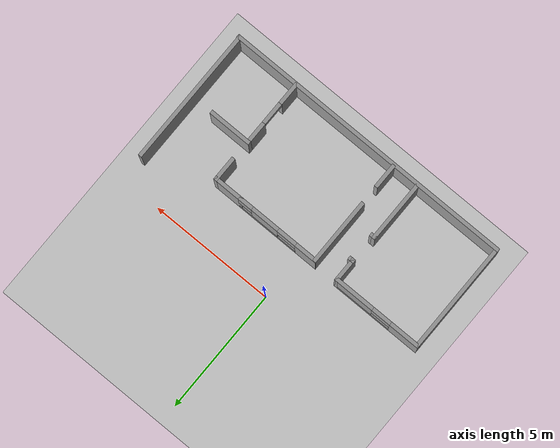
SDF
<sdf version="1.6">
 <world name="default">
  <model name="ground_plane">
   <static>1</static>
   <link name="link">
    <collision name="collision">
     <geometry><plane><normal>0 0 1</normal><size>100 100</size></plane></geometry>
     <surface><friction><ode><mu>100</mu><mu2>50</mu2></ode></friction></surface>
    </collision>
    <visual name="visual">
     <cast_shadows>0</cast_shadows>
     <geometry><plane><normal>0 0 1</normal><size>100 100</size></plane></geometry>
     <material>
      <script><uri>file://media/materials/scripts/gazebo.material</uri><name>Gazebo/Grey</name></script>
     </material>
    </visual>
   </link>
  </model>
  <model name="officeadd">
   <pose>0.57945 -3.61762 0 0 -0 0</pose>
   <link name="Wall_14">
    <pose>-4.02731 1.67357 0 0 -0 0</pose>
    <visual name="Wall_14_Visual_0">
     <pose>-1.24347 0 1.25 0 -0 0</pose>
     <geometry><box><size>1.26306 0.15 2.5</size></box></geometry>
     <material>
      <script><uri>file://media/materials/scripts/gazebo.material</uri><name>Gazebo/Grey</name></script>
      <ambient>1 1 1 1</ambient>
     </material>
     <meta><layer>0</layer></meta>
    </visual>
    <collision name="Wall_14_Collision_0">
     <geometry><box><size>1.26306 0.15 2.5</size></box></geometry>
     <pose>-1.24347 0 1.25 0 -0 0</pose>
    </collision>
    <visual name="Wall_14_Visual_1">
     <pose>0.631531 0 0.25 0 -0 0</pose>
     <geometry><box><size>2.48694 0.15 0.5</size></box></geometry>
     <material>
      <script><uri>file://media/materials/scripts/gazebo.material</uri><name>Gazebo/Grey</name></script>
      <ambient>1 1 1 1</ambient>
     </material>
     <meta><layer>0</layer></meta>
    </visual>
    <collision name="Wall_14_Collision_1">
     <geometry><box><size>2.48694 0.15 0.5</size></box></geometry>
     <pose>0.631531 0 0.25 0 -0 0</pose>
    </collision>
    <visual name="Wall_14_Visual_2">
     <pose>1.03153 0 1.5 0 -0 0</pose>
     <geometry><box><size>1.68694 0.15 2</size></box></geometry>
     <material>
      <script><uri>file://media/materials/scripts/gazebo.material</uri><name>Gazebo/Grey</name></script>
      <ambient>1 1 1 1</ambient>
     </material>
     <meta><layer>0</layer></meta>
    </visual>
    <collision name="Wall_14_Collision_2">
     <geometry><box><size>1.68694 0.15 2</size></box></geometry>
     <pose>1.03153 0 1.5 0 -0 0</pose>
    </collision>
    <visual name="Wall_14_Visual_3">
     <pose>-0.211938 0 1.9 0 -0 0</pose>
     <geometry><box><size>0.8 0.15 1.2</size></box></geometry>
     <material>
      <script><uri>file://media/materials/scripts/gazebo.material</uri><name>Gazebo/Grey</name></script>
      <ambient>1 1 1 1</ambient>
     </material>
     <meta><layer>0</layer></meta>
    </visual>
    <collision name="Wall_14_Collision_3">
     <geometry><box><size>0.8 0.15 1.2</size></box></geometry>
     <pose>-0.211938 0 1.9 0 -0 0</pose>
    </collision>
   </link>
   <link name="Wall_15">
    <collision name="Wall_15_Collision">
     <geometry><box><size>1 0.15 2.5</size></box></geometry>
     <pose>0 0 1.25 0 -0 0</pose>
    </collision>
    <visual name="Wall_15_Visual">
     <pose>0 0 1.25 0 -0 0</pose>
     <geometry><box><size>1 0.15 2.5</size></box></geometry>
     <material>
      <script><uri>file://media/materials/scripts/gazebo.material</uri><name>Gazebo/Grey</name></script>
      <ambient>1 1 1 1</ambient>
     </material>
     <meta><layer>0</layer></meta>
    </visual>
    <pose>-2.22731 1.24857 0 0 -0 -1.5708</pose>
   </link>
   <link name="Wall_16">
    <collision name="Wall_16_Collision">
     <geometry><box><size>0.25 0.15 2.5</size></box></geometry>
     <pose>0 0 1.25 0 -0 0</pose>
    </collision>
    <visual name="Wall_16_Visual">
     <pose>0 0 1.25 0 -0 0</pose>
     <geometry><box><size>0.25 0.15 2.5</size></box></geometry>
     <material>
      <script><uri>file://media/materials/scripts/gazebo.material</uri><name>Gazebo/Grey</name></script>
      <ambient>1 1 1 1</ambient>
     </material>
     <meta><layer>0</layer></meta>
    </visual>
    <pose>-2.17731 0.823566 0 0 -0 0</pose>
   </link>
   <link name="Wall_18">
    <collision name="Wall_18_Collision">
     <geometry><box><size>0.25 0.15 2.5</size></box></geometry>
     <pose>0 0 1.25 0 -0 0</pose>
    </collision>
    <visual name="Wall_18_Visual">
     <pose>0 0 1.25 0 -0 0</pose>
     <geometry><box><size>0.25 0.15 2.5</size></box></geometry>
     <material>
      <script><uri>file://media/materials/scripts/gazebo.material</uri><name>Gazebo/Grey</name></script>
      <ambient>1 1 1 1</ambient>
     </material>
     <meta><layer>0</layer></meta>
    </visual>
    <pose>-2.23314 -0.282491 0 0 -0 0</pose>
   </link>
   <link name="Wall_20">
    <collision name="Wall_20_Collision">
     <geometry><box><size>2.68388 0.15 2.5</size></box></geometry>
     <pose>0 0 1.25 0 -0 0</pose>
    </collision>
    <visual name="Wall_20_Visual">
     <pose>0 0 1.25 0 -0 0</pose>
     <geometry><box><size>2.68388 0.15 2.5</size></box></geometry>
     <material>
      <script><uri>file://media/materials/scripts/gazebo.material</uri><name>Gazebo/Grey</name></script>
      <ambient>1 1 1 1</ambient>
     </material>
     <meta><layer>0</layer></meta>
    </visual>
    <pose>-1.21507 0.374342 0 0 -0 -1.5708</pose>
   </link>
   <link name="Wall_22">
    <collision name="Wall_22_Collision">
     <geometry><box><size>1 0.15 2.5</size></box></geometry>
     <pose>0 0 1.25 0 -0 0</pose>
    </collision>
    <visual name="Wall_22_Visual">
     <pose>0 0 1.25 0 -0 0</pose>
     <geometry><box><size>1 0.15 2.5</size></box></geometry>
     <material>
      <script><uri>file://media/materials/scripts/gazebo.material</uri><name>Gazebo/Grey</name></script>
      <ambient>1 1 1 1</ambient>
     </material>
     <meta><layer>0</layer></meta>
    </visual>
    <pose>-1.20548 -2.16447 0 0 -0 -1.5708</pose>
   </link>
   <link name="Wall_24">
    <pose>0.459933 1.6545 0 0 -0 0</pose>
    <visual name="Wall_24_Visual_0">
     <pose>-1.28249 0 1.25 0 -0 0</pose>
     <geometry><box><size>0.935013 0.15 2.5</size></box></geometry>
     <material>
      <script><uri>file://media/materials/scripts/gazebo.material</uri><name>Gazebo/Grey</name></script>
      <ambient>1 1 1 1</ambient>
     </material>
     <meta><layer>0</layer></meta>
    </visual>
    <collision name="Wall_24_Collision_0">
     <geometry><box><size>0.935013 0.15 2.5</size></box></geometry>
     <pose>-1.28249 0 1.25 0 -0 0</pose>
    </collision>
    <visual name="Wall_24_Visual_1">
     <pose>0.467506 0 0.25 0 -0 0</pose>
     <geometry><box><size>2.56499 0.15 0.5</size></box></geometry>
     <material>
      <script><uri>file://media/materials/scripts/gazebo.material</uri><name>Gazebo/Grey</name></script>
      <ambient>1 1 1 1</ambient>
     </material>
     <meta><layer>0</layer></meta>
    </visual>
    <collision name="Wall_24_Collision_1">
     <geometry><box><size>2.56499 0.15 0.5</size></box></geometry>
     <pose>0.467506 0 0.25 0 -0 0</pose>
    </collision>
    <visual name="Wall_24_Visual_2">
     <pose>0.570578 0 1.5 0 -0 0</pose>
     <geometry><box><size>1.17113 0.15 2</size></box></geometry>
     <material>
      <script><uri>file://media/materials/scripts/gazebo.material</uri><name>Gazebo/Grey</name></script>
      <ambient>1 1 1 1</ambient>
     </material>
     <meta><layer>0</layer></meta>
    </visual>
    <collision name="Wall_24_Collision_2">
     <geometry><box><size>1.17113 0.15 2</size></box></geometry>
     <pose>0.570578 0 1.5 0 -0 0</pose>
    </collision>
    <visual name="Wall_24_Visual_3">
     <pose>0.570578 0 1.5 0 -0 0</pose>
     <geometry><box><size>1.17113 0.15 2</size></box></geometry>
     <material>
      <script><uri>file://media/materials/scripts/gazebo.material</uri><name>Gazebo/Grey</name></script>
      <ambient>1 1 1 1</ambient>
     </material>
     <meta><layer>0</layer></meta>
    </visual>
    <collision name="Wall_24_Collision_3">
     <geometry><box><size>1.17113 0.15 2</size></box></geometry>
     <pose>0.570578 0 1.5 0 -0 0</pose>
    </collision>
    <visual name="Wall_24_Visual_4">
     <pose>-0.414987 0 1.9 0 -0 0</pose>
     <geometry><box><size>0.8 0.15 1.2</size></box></geometry>
     <material>
      <script><uri>file://media/materials/scripts/gazebo.material</uri><name>Gazebo/Grey</name></script>
      <ambient>1 1 1 1</ambient>
     </material>
     <meta><layer>0</layer></meta>
    </visual>
    <collision name="Wall_24_Collision_4">
     <geometry><box><size>0.8 0.15 1.2</size></box></geometry>
     <pose>-0.414987 0 1.9 0 -0 0</pose>
    </collision>
    <visual name="Wall_24_Visual_5">
     <pose>1.45307 0 1.9 0 -0 0</pose>
     <geometry><box><size>0.593857 0.15 1.2</size></box></geometry>
     <material>
      <script><uri>file://media/materials/scripts/gazebo.material</uri><name>Gazebo/Grey</name></script>
      <ambient>1 1 1 1</ambient>
     </material>
     <meta><layer>0</layer></meta>
    </visual>
    <collision name="Wall_24_Collision_5">
     <geometry><box><size>0.593857 0.15 1.2</size></box></geometry>
     <pose>1.45307 0 1.9 0 -0 0</pose>
    </collision>
    <visual name="Wall_24_Visual_6">
     <pose>1.45307 0 1.9 0 -0 0</pose>
     <geometry><box><size>0.593857 0.15 1.2</size></box></geometry>
     <material>
      <script><uri>file://media/materials/scripts/gazebo.material</uri><name>Gazebo/Grey</name></script>
      <ambient>1 1 1 1</ambient>
     </material>
     <meta><layer>0</layer></meta>
    </visual>
    <collision name="Wall_24_Collision_6">
     <geometry><box><size>0.593857 0.15 1.2</size></box></geometry>
     <pose>1.45307 0 1.9 0 -0 0</pose>
    </collision>
   </link>
   <link name="Wall_28">
    <collision name="Wall_28_Collision">
     <geometry><box><size>1.01323 0.15 2.5</size></box></geometry>
     <pose>0 0 1.25 0 -0 0</pose>
    </collision>
    <visual name="Wall_28_Visual">
     <pose>0 0 1.25 0 -0 0</pose>
     <geometry><box><size>1.01323 0.15 2.5</size></box></geometry>
     <material>
      <script><uri>file://media/materials/scripts/gazebo.material</uri><name>Gazebo/Grey</name></script>
      <ambient>1 1 1 1</ambient>
     </material>
     <meta><layer>0</layer></meta>
    </visual>
    <pose>3.24816 1.22289 0 0 -0 -1.5708</pose>
   </link>
   <link name="Wall_3">
    <collision name="Wall_3_Collision">
     <geometry><box><size>4.5 0.15 2.5</size></box></geometry>
     <pose>0 0 1.25 0 -0 0</pose>
    </collision>
    <visual name="Wall_3_Visual">
     <pose>0 0 1.25 0 -0 0</pose>
     <geometry><box><size>4.5 0.15 2.5</size></box></geometry>
     <material>
      <script><uri>file://media/materials/scripts/gazebo.material</uri><name>Gazebo/Grey</name></script>
      <ambient>1 1 1 1</ambient>
     </material>
     <meta><layer>0</layer></meta>
    </visual>
    <pose>-5.82731 -0.501434 0 0 -0 -1.5708</pose>
   </link>
   <link name="Wall_30">
    <pose>3.22581 -1.33288 0 0 -0 -1.5708</pose>
    <visual name="Wall_30_Visual_0">
     <pose>-0.907732 0 1.25 0 -0 0</pose>
     <geometry><box><size>0.934537 0.15 2.5</size></box></geometry>
     <material>
      <script><uri>file://media/materials/scripts/gazebo.material</uri><name>Gazebo/Grey</name></script>
      <ambient>1 1 1 1</ambient>
     </material>
     <meta><layer>0</layer></meta>
    </visual>
    <collision name="Wall_30_Collision_0">
     <geometry><box><size>0.934537 0.15 2.5</size></box></geometry>
     <pose>-0.907732 0 1.25 0 -0 0</pose>
    </collision>
    <visual name="Wall_30_Visual_1">
     <pose>0.917268 0 1.25 0 -0 0</pose>
     <geometry><box><size>0.915463 0.15 2.5</size></box></geometry>
     <material>
      <script><uri>file://media/materials/scripts/gazebo.material</uri><name>Gazebo/Grey</name></script>
      <ambient>1 1 1 1</ambient>
     </material>
     <meta><layer>0</layer></meta>
    </visual>
    <collision name="Wall_30_Collision_1">
     <geometry><box><size>0.915463 0.15 2.5</size></box></geometry>
     <pose>0.917268 0 1.25 0 -0 0</pose>
    </collision>
    <visual name="Wall_30_Visual_2">
     <pose>0.009537 0 2.25 0 -0 0</pose>
     <geometry><box><size>0.9 0.15 0.5</size></box></geometry>
     <material>
      <script><uri>file://media/materials/scripts/gazebo.material</uri><name>Gazebo/Grey</name></script>
      <ambient>1 1 1 1</ambient>
     </material>
     <meta><layer>0</layer></meta>
    </visual>
    <collision name="Wall_30_Collision_2">
     <geometry><box><size>0.9 0.15 0.5</size></box></geometry>
     <pose>0.009537 0 2.25 0 -0 0</pose>
    </collision>
   </link>
   <link name="Wall_32">
    <collision name="Wall_32_Collision">
     <geometry><box><size>1.75 0.15 2.5</size></box></geometry>
     <pose>0 0 1.25 0 -0 0</pose>
    </collision>
    <visual name="Wall_32_Visual">
     <pose>0 0 1.25 0 -0 0</pose>
     <geometry><box><size>1.75 0.15 2.5</size></box></geometry>
     <material>
      <script><uri>file://media/materials/scripts/gazebo.material</uri><name>Gazebo/Grey</name></script>
      <ambient>1 1 1 1</ambient>
     </material>
     <meta><layer>0</layer></meta>
    </visual>
    <pose>4.02581 -0.032875 0 0 -0 0</pose>
   </link>
   <link name="Wall_34">
    <collision name="Wall_34_Collision">
     <geometry><box><size>1.26323 0.15 2.5</size></box></geometry>
     <pose>0 0 1.25 0 -0 0</pose>
    </collision>
    <visual name="Wall_34_Visual">
     <pose>0 0 1.25 0 -0 0</pose>
     <geometry><box><size>1.26323 0.15 2.5</size></box></geometry>
     <material>
      <script><uri>file://media/materials/scripts/gazebo.material</uri><name>Gazebo/Grey</name></script>
      <ambient>1 1 1 1</ambient>
     </material>
     <meta><layer>0</layer></meta>
    </visual>
    <pose>2.69155 1.6545 0 0 -0 0</pose>
   </link>
   <link name="Wall_5">
    <collision name="Wall_5_Collision">
     <geometry><box><size>11.8046 0.15 2.5</size></box></geometry>
     <pose>0 0 1.25 0 -0 0</pose>
    </collision>
    <visual name="Wall_5_Visual">
     <pose>0 0 1.25 0 -0 0</pose>
     <geometry><box><size>11.8046 0.15 2.5</size></box></geometry>
     <material>
      <script><uri>file://media/materials/scripts/gazebo.material</uri><name>Gazebo/Grey</name></script>
      <ambient>1 1 1 1</ambient>
     </material>
     <meta><layer>0</layer></meta>
    </visual>
    <pose>0 -2.67499 0 0 -0 0.000248</pose>
   </link>
   <link name="Wall_6">
    <collision name="Wall_6_Collision">
     <geometry><box><size>5.5 0.15 2.5</size></box></geometry>
     <pose>0 0 1.25 0 -0 0</pose>
    </collision>
    <visual name="Wall_6_Visual">
     <pose>0 0 1.25 0 -0 0</pose>
     <geometry><box><size>5.5 0.15 2.5</size></box></geometry>
     <material>
      <script><uri>file://media/materials/scripts/gazebo.material</uri><name>Gazebo/Grey</name></script>
      <ambient>1 1 1 1</ambient>
     </material>
     <meta><layer>0</layer></meta>
    </visual>
    <pose>5.80719 0.001452 0 0 -0 1.5708</pose>
   </link>
   <link name="Wall_8">
    <collision name="Wall_8_Collision">
     <geometry><box><size>2.5 0.15 2.5</size></box></geometry>
     <pose>0 0 1.25 0 -0 0</pose>
    </collision>
    <visual name="Wall_8_Visual">
     <pose>0 0 1.25 0 -0 0</pose>
     <geometry><box><size>2.5 0.15 2.5</size></box></geometry>
     <material>
      <script><uri>file://media/materials/scripts/gazebo.material</uri><name>Gazebo/Grey</name></script>
      <ambient>1 1 1 1</ambient>
     </material>
     <meta><layer>0</layer></meta>
    </visual>
    <pose>-2.28314 -1.45749 0 0 -0 1.5708</pose>
   </link>
   <static>1</static>
  </model>
 </world>
</sdf>
